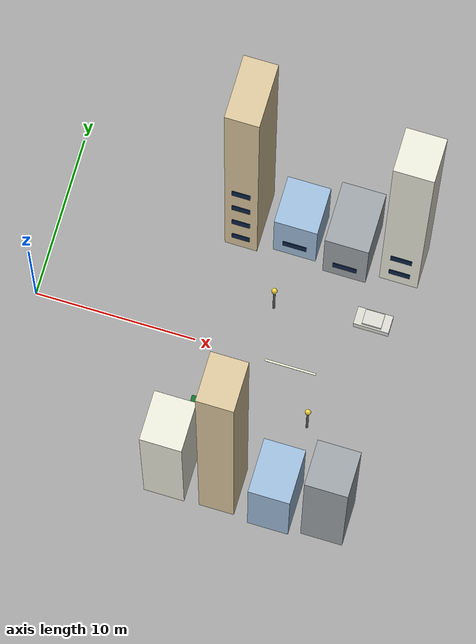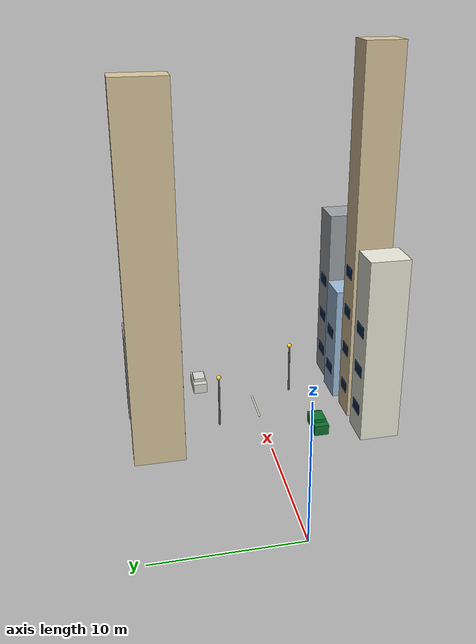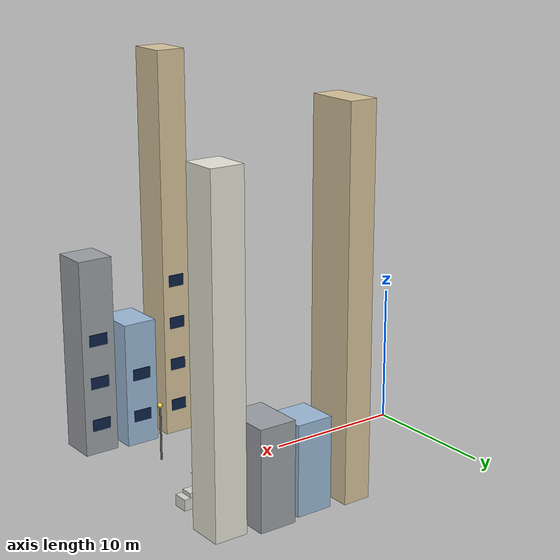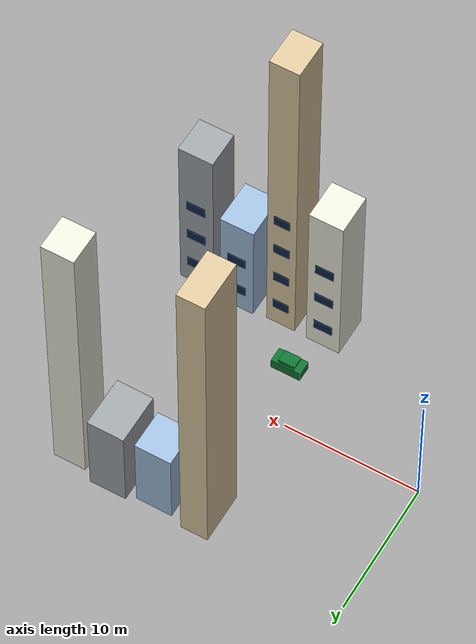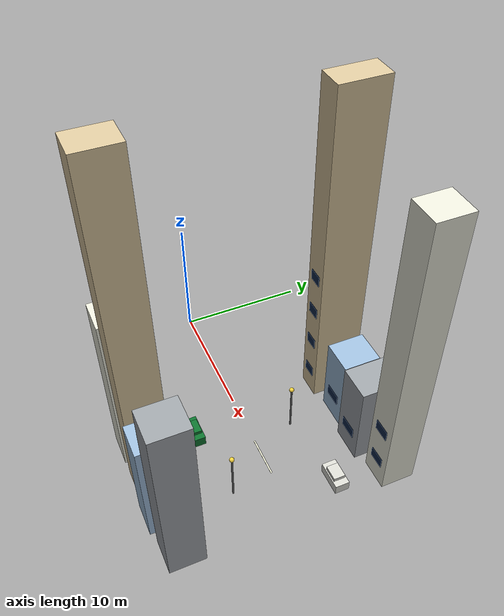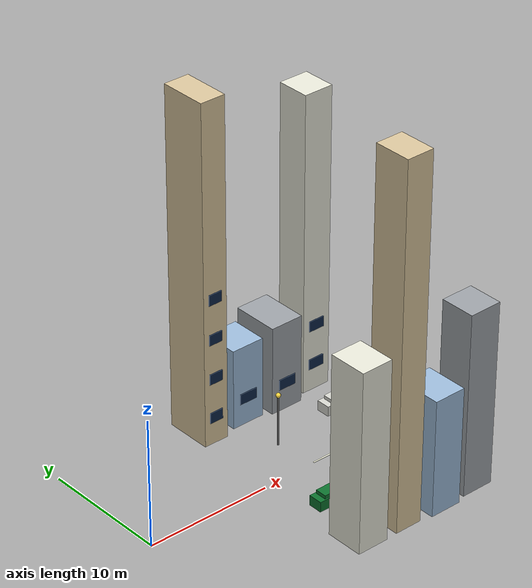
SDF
<sdf version="1.7">
 <world name="urban_street">
  <model name="white_lane_marking_07">
   <static>true</static>
   <pose>16 0 0.055 0 0 0.0</pose>
   <link name="link">
    <collision name="collision"><geometry><box><size>3.2 0.12 0.02</size></box></geometry></collision>
    <visual name="visual">
     <geometry><box><size>3.2 0.12 0.02</size></box></geometry>
     <material>
      <ambient>0.95 0.95 0.85 1</ambient>
      <diffuse>0.95 0.95 0.85 1</diffuse>
      <specular>0.1 0.1 0.1 1</specular>
     </material>
    </visual>
   </link>
  </model>
  <model name="building_facade_17">
   <static>true</static>
   <pose>11.0 -8.2 7.13 0 0 0.0</pose>
   <link name="link">
    <collision name="collision"><geometry><box><size>2.51 2.97 14.25</size></box></geometry></collision>
    <visual name="visual">
     <geometry><box><size>2.51 2.97 14.25</size></box></geometry>
     <material>
      <ambient>0.92 0.92 0.86 1</ambient>
      <diffuse>0.92 0.92 0.86 1</diffuse>
      <specular>0.1 0.1 0.1 1</specular>
     </material>
    </visual>
   </link>
  </model>
  <model name="building_facade_17_window_0">
   <static>true</static>
   <pose>11.0 -6.68 2.2 0 0 0.0</pose>
   <link name="link">
    <collision name="collision"><geometry><box><size>1.38 0.05 0.85</size></box></geometry></collision>
    <visual name="visual">
     <geometry><box><size>1.38 0.05 0.85</size></box></geometry>
     <material>
      <ambient>0.05 0.14 0.28 1</ambient>
      <diffuse>0.05 0.14 0.28 1</diffuse>
      <specular>0.1 0.1 0.1 1</specular>
     </material>
    </visual>
   </link>
  </model>
  <model name="building_facade_17_window_1">
   <static>true</static>
   <pose>11.0 -6.68 5.4 0 0 0.0</pose>
   <link name="link">
    <collision name="collision"><geometry><box><size>1.38 0.05 0.85</size></box></geometry></collision>
    <visual name="visual">
     <geometry><box><size>1.38 0.05 0.85</size></box></geometry>
     <material>
      <ambient>0.05 0.14 0.28 1</ambient>
      <diffuse>0.05 0.14 0.28 1</diffuse>
      <specular>0.1 0.1 0.1 1</specular>
     </material>
    </visual>
   </link>
  </model>
  <model name="building_facade_17_window_2">
   <static>true</static>
   <pose>11.0 -6.68 8.6 0 0 0.0</pose>
   <link name="link">
    <collision name="collision"><geometry><box><size>1.38 0.05 0.85</size></box></geometry></collision>
    <visual name="visual">
     <geometry><box><size>1.38 0.05 0.85</size></box></geometry>
     <material>
      <ambient>0.05 0.14 0.28 1</ambient>
      <diffuse>0.05 0.14 0.28 1</diffuse>
      <specular>0.1 0.1 0.1 1</specular>
     </material>
    </visual>
   </link>
  </model>
  <model name="building_facade_18">
   <static>true</static>
   <pose>14.25 -8.2 14.21 0 0 0.0</pose>
   <link name="link">
    <collision name="collision"><geometry><box><size>2.17 2.85 28.42</size></box></geometry></collision>
    <visual name="visual">
     <geometry><box><size>2.17 2.85 28.42</size></box></geometry>
     <material>
      <ambient>0.86 0.78 0.62 1</ambient>
      <diffuse>0.86 0.78 0.62 1</diffuse>
      <specular>0.1 0.1 0.1 1</specular>
     </material>
    </visual>
   </link>
  </model>
  <model name="building_facade_18_window_0">
   <static>true</static>
   <pose>14.25 -6.75 2.2 0 0 0.0</pose>
   <link name="link">
    <collision name="collision"><geometry><box><size>1.19 0.05 0.85</size></box></geometry></collision>
    <visual name="visual">
     <geometry><box><size>1.19 0.05 0.85</size></box></geometry>
     <material>
      <ambient>0.05 0.14 0.28 1</ambient>
      <diffuse>0.05 0.14 0.28 1</diffuse>
      <specular>0.1 0.1 0.1 1</specular>
     </material>
    </visual>
   </link>
  </model>
  <model name="building_facade_18_window_1">
   <static>true</static>
   <pose>14.25 -6.75 5.4 0 0 0.0</pose>
   <link name="link">
    <collision name="collision"><geometry><box><size>1.19 0.05 0.85</size></box></geometry></collision>
    <visual name="visual">
     <geometry><box><size>1.19 0.05 0.85</size></box></geometry>
     <material>
      <ambient>0.05 0.14 0.28 1</ambient>
      <diffuse>0.05 0.14 0.28 1</diffuse>
      <specular>0.1 0.1 0.1 1</specular>
     </material>
    </visual>
   </link>
  </model>
  <model name="building_facade_18_window_2">
   <static>true</static>
   <pose>14.25 -6.75 8.6 0 0 0.0</pose>
   <link name="link">
    <collision name="collision"><geometry><box><size>1.19 0.05 0.85</size></box></geometry></collision>
    <visual name="visual">
     <geometry><box><size>1.19 0.05 0.85</size></box></geometry>
     <material>
      <ambient>0.05 0.14 0.28 1</ambient>
      <diffuse>0.05 0.14 0.28 1</diffuse>
      <specular>0.1 0.1 0.1 1</specular>
     </material>
    </visual>
   </link>
  </model>
  <model name="building_facade_18_window_3">
   <static>true</static>
   <pose>14.25 -6.75 11.8 0 0 0.0</pose>
   <link name="link">
    <collision name="collision"><geometry><box><size>1.19 0.05 0.85</size></box></geometry></collision>
    <visual name="visual">
     <geometry><box><size>1.19 0.05 0.85</size></box></geometry>
     <material>
      <ambient>0.05 0.14 0.28 1</ambient>
      <diffuse>0.05 0.14 0.28 1</diffuse>
      <specular>0.1 0.1 0.1 1</specular>
     </material>
    </visual>
   </link>
  </model>
  <model name="building_facade_19">
   <static>true</static>
   <pose>17.5 -8.2 4.64 0 0 0.0</pose>
   <link name="link">
    <collision name="collision"><geometry><box><size>2.52 3.29 9.28</size></box></geometry></collision>
    <visual name="visual">
     <geometry><box><size>2.52 3.29 9.28</size></box></geometry>
     <material>
      <ambient>0.62 0.74 0.86 1</ambient>
      <diffuse>0.62 0.74 0.86 1</diffuse>
      <specular>0.1 0.1 0.1 1</specular>
     </material>
    </visual>
   </link>
  </model>
  <model name="building_facade_19_window_0">
   <static>true</static>
   <pose>17.5 -6.52 2.2 0 0 0.0</pose>
   <link name="link">
    <collision name="collision"><geometry><box><size>1.39 0.05 0.85</size></box></geometry></collision>
    <visual name="visual">
     <geometry><box><size>1.39 0.05 0.85</size></box></geometry>
     <material>
      <ambient>0.05 0.14 0.28 1</ambient>
      <diffuse>0.05 0.14 0.28 1</diffuse>
      <specular>0.1 0.1 0.1 1</specular>
     </material>
    </visual>
   </link>
  </model>
  <model name="building_facade_19_window_1">
   <static>true</static>
   <pose>17.5 -6.52 5.4 0 0 0.0</pose>
   <link name="link">
    <collision name="collision"><geometry><box><size>1.39 0.05 0.85</size></box></geometry></collision>
    <visual name="visual">
     <geometry><box><size>1.39 0.05 0.85</size></box></geometry>
     <material>
      <ambient>0.05 0.14 0.28 1</ambient>
      <diffuse>0.05 0.14 0.28 1</diffuse>
      <specular>0.1 0.1 0.1 1</specular>
     </material>
    </visual>
   </link>
  </model>
  <model name="building_facade_20">
   <static>true</static>
   <pose>20.75 -8.2 7.24 0 0 0.0</pose>
   <link name="link">
    <collision name="collision"><geometry><box><size>2.58 2.71 14.49</size></box></geometry></collision>
    <visual name="visual">
     <geometry><box><size>2.58 2.71 14.49</size></box></geometry>
     <material>
      <ambient>0.62 0.64 0.66 1</ambient>
      <diffuse>0.62 0.64 0.66 1</diffuse>
      <specular>0.1 0.1 0.1 1</specular>
     </material>
    </visual>
   </link>
  </model>
  <model name="building_facade_20_window_0">
   <static>true</static>
   <pose>20.75 -6.81 2.2 0 0 0.0</pose>
   <link name="link">
    <collision name="collision"><geometry><box><size>1.42 0.05 0.85</size></box></geometry></collision>
    <visual name="visual">
     <geometry><box><size>1.42 0.05 0.85</size></box></geometry>
     <material>
      <ambient>0.05 0.14 0.28 1</ambient>
      <diffuse>0.05 0.14 0.28 1</diffuse>
      <specular>0.1 0.1 0.1 1</specular>
     </material>
    </visual>
   </link>
  </model>
  <model name="building_facade_20_window_1">
   <static>true</static>
   <pose>20.75 -6.81 5.4 0 0 0.0</pose>
   <link name="link">
    <collision name="collision"><geometry><box><size>1.42 0.05 0.85</size></box></geometry></collision>
    <visual name="visual">
     <geometry><box><size>1.42 0.05 0.85</size></box></geometry>
     <material>
      <ambient>0.05 0.14 0.28 1</ambient>
      <diffuse>0.05 0.14 0.28 1</diffuse>
      <specular>0.1 0.1 0.1 1</specular>
     </material>
    </visual>
   </link>
  </model>
  <model name="building_facade_20_window_2">
   <static>true</static>
   <pose>20.75 -6.81 8.6 0 0 0.0</pose>
   <link name="link">
    <collision name="collision"><geometry><box><size>1.42 0.05 0.85</size></box></geometry></collision>
    <visual name="visual">
     <geometry><box><size>1.42 0.05 0.85</size></box></geometry>
     <material>
      <ambient>0.05 0.14 0.28 1</ambient>
      <diffuse>0.05 0.14 0.28 1</diffuse>
      <specular>0.1 0.1 0.1 1</specular>
     </material>
    </visual>
   </link>
  </model>
  <model name="building_facade_43">
   <static>true</static>
   <pose>11.0 8.2 13.48 0 0 0.0</pose>
   <link name="link">
    <collision name="collision"><geometry><box><size>2.02 3.71 26.97</size></box></geometry></collision>
    <visual name="visual">
     <geometry><box><size>2.02 3.71 26.97</size></box></geometry>
     <material>
      <ambient>0.86 0.78 0.62 1</ambient>
      <diffuse>0.86 0.78 0.62 1</diffuse>
      <specular>0.1 0.1 0.1 1</specular>
     </material>
    </visual>
   </link>
  </model>
  <model name="building_facade_43_window_0">
   <static>true</static>
   <pose>11.0 6.32 2.2 0 0 0.0</pose>
   <link name="link">
    <collision name="collision"><geometry><box><size>1.11 0.05 0.85</size></box></geometry></collision>
    <visual name="visual">
     <geometry><box><size>1.11 0.05 0.85</size></box></geometry>
     <material>
      <ambient>0.05 0.14 0.28 1</ambient>
      <diffuse>0.05 0.14 0.28 1</diffuse>
      <specular>0.1 0.1 0.1 1</specular>
     </material>
    </visual>
   </link>
  </model>
  <model name="building_facade_43_window_1">
   <static>true</static>
   <pose>11.0 6.32 5.4 0 0 0.0</pose>
   <link name="link">
    <collision name="collision"><geometry><box><size>1.11 0.05 0.85</size></box></geometry></collision>
    <visual name="visual">
     <geometry><box><size>1.11 0.05 0.85</size></box></geometry>
     <material>
      <ambient>0.05 0.14 0.28 1</ambient>
      <diffuse>0.05 0.14 0.28 1</diffuse>
      <specular>0.1 0.1 0.1 1</specular>
     </material>
    </visual>
   </link>
  </model>
  <model name="building_facade_43_window_2">
   <static>true</static>
   <pose>11.0 6.32 8.6 0 0 0.0</pose>
   <link name="link">
    <collision name="collision"><geometry><box><size>1.11 0.05 0.85</size></box></geometry></collision>
    <visual name="visual">
     <geometry><box><size>1.11 0.05 0.85</size></box></geometry>
     <material>
      <ambient>0.05 0.14 0.28 1</ambient>
      <diffuse>0.05 0.14 0.28 1</diffuse>
      <specular>0.1 0.1 0.1 1</specular>
     </material>
    </visual>
   </link>
  </model>
  <model name="building_facade_43_window_3">
   <static>true</static>
   <pose>11.0 6.32 11.8 0 0 0.0</pose>
   <link name="link">
    <collision name="collision"><geometry><box><size>1.11 0.05 0.85</size></box></geometry></collision>
    <visual name="visual">
     <geometry><box><size>1.11 0.05 0.85</size></box></geometry>
     <material>
      <ambient>0.05 0.14 0.28 1</ambient>
      <diffuse>0.05 0.14 0.28 1</diffuse>
      <specular>0.1 0.1 0.1 1</specular>
     </material>
    </visual>
   </link>
  </model>
  <model name="building_facade_44">
   <static>true</static>
   <pose>14.25 8.2 3.22 0 0 0.0</pose>
   <link name="link">
    <collision name="collision"><geometry><box><size>2.67 2.9 6.45</size></box></geometry></collision>
    <visual name="visual">
     <geometry><box><size>2.67 2.9 6.45</size></box></geometry>
     <material>
      <ambient>0.62 0.74 0.86 1</ambient>
      <diffuse>0.62 0.74 0.86 1</diffuse>
      <specular>0.1 0.1 0.1 1</specular>
     </material>
    </visual>
   </link>
  </model>
  <model name="building_facade_44_window_0">
   <static>true</static>
   <pose>14.25 6.72 2.2 0 0 0.0</pose>
   <link name="link">
    <collision name="collision"><geometry><box><size>1.47 0.05 0.85</size></box></geometry></collision>
    <visual name="visual">
     <geometry><box><size>1.47 0.05 0.85</size></box></geometry>
     <material>
      <ambient>0.05 0.14 0.28 1</ambient>
      <diffuse>0.05 0.14 0.28 1</diffuse>
      <specular>0.1 0.1 0.1 1</specular>
     </material>
    </visual>
   </link>
  </model>
  <model name="building_facade_45">
   <static>true</static>
   <pose>17.5 8.2 3.57 0 0 0.0</pose>
   <link name="link">
    <collision name="collision"><geometry><box><size>2.7 3.73 7.14</size></box></geometry></collision>
    <visual name="visual">
     <geometry><box><size>2.7 3.73 7.14</size></box></geometry>
     <material>
      <ambient>0.62 0.64 0.66 1</ambient>
      <diffuse>0.62 0.64 0.66 1</diffuse>
      <specular>0.1 0.1 0.1 1</specular>
     </material>
    </visual>
   </link>
  </model>
  <model name="building_facade_45_window_0">
   <static>true</static>
   <pose>17.5 6.3 2.2 0 0 0.0</pose>
   <link name="link">
    <collision name="collision"><geometry><box><size>1.49 0.05 0.85</size></box></geometry></collision>
    <visual name="visual">
     <geometry><box><size>1.49 0.05 0.85</size></box></geometry>
     <material>
      <ambient>0.05 0.14 0.28 1</ambient>
      <diffuse>0.05 0.14 0.28 1</diffuse>
      <specular>0.1 0.1 0.1 1</specular>
     </material>
    </visual>
   </link>
  </model>
  <model name="building_facade_46">
   <static>true</static>
   <pose>20.75 8.2 12.01 0 0 0.0</pose>
   <link name="link">
    <collision name="collision"><geometry><box><size>2.39 2.59 24.02</size></box></geometry></collision>
    <visual name="visual">
     <geometry><box><size>2.39 2.59 24.02</size></box></geometry>
     <material>
      <ambient>0.92 0.92 0.86 1</ambient>
      <diffuse>0.92 0.92 0.86 1</diffuse>
      <specular>0.1 0.1 0.1 1</specular>
     </material>
    </visual>
   </link>
  </model>
  <model name="building_facade_46_window_0">
   <static>true</static>
   <pose>20.75 6.88 2.2 0 0 0.0</pose>
   <link name="link">
    <collision name="collision"><geometry><box><size>1.31 0.05 0.85</size></box></geometry></collision>
    <visual name="visual">
     <geometry><box><size>1.31 0.05 0.85</size></box></geometry>
     <material>
      <ambient>0.05 0.14 0.28 1</ambient>
      <diffuse>0.05 0.14 0.28 1</diffuse>
      <specular>0.1 0.1 0.1 1</specular>
     </material>
    </visual>
   </link>
  </model>
  <model name="building_facade_46_window_1">
   <static>true</static>
   <pose>20.75 6.88 5.4 0 0 0.0</pose>
   <link name="link">
    <collision name="collision"><geometry><box><size>1.31 0.05 0.85</size></box></geometry></collision>
    <visual name="visual">
     <geometry><box><size>1.31 0.05 0.85</size></box></geometry>
     <material>
      <ambient>0.05 0.14 0.28 1</ambient>
      <diffuse>0.05 0.14 0.28 1</diffuse>
      <specular>0.1 0.1 0.1 1</specular>
     </material>
    </visual>
   </link>
  </model>
  <model name="street_pole_13">
   <static>true</static>
   <pose>14.0 3.25 2.0 0 0 0</pose>
   <link name="link">
    <collision name="collision">
     <geometry><cylinder><radius>0.07</radius><length>4.0</length></cylinder></geometry>
    </collision>
    <visual name="visual">
     <geometry><cylinder><radius>0.07</radius><length>4.0</length></cylinder></geometry>
     <material>
      <ambient>0.35 0.35 0.35 1</ambient>
      <diffuse>0.35 0.35 0.35 1</diffuse>
      <specular>0.1 0.1 0.1 1</specular>
     </material>
    </visual>
   </link>
  </model>
  <model name="lamp_head_13">
   <static>true</static>
   <pose>14.0 3.25 4.15 0 0 0</pose>
   <link name="link">
    <visual name="visual">
     <geometry><sphere><radius>0.18</radius></sphere></geometry>
     <material>
      <ambient>1.0 0.85 0.25 1</ambient>
      <diffuse>1.0 0.85 0.25 1</diffuse>
      <specular>0.1 0.1 0.1 1</specular>
     </material>
    </visual>
   </link>
  </model>
  <model name="street_pole_14">
   <static>true</static>
   <pose>18.0 -3.25 2.0 0 0 0</pose>
   <link name="link">
    <collision name="collision">
     <geometry><cylinder><radius>0.07</radius><length>4.0</length></cylinder></geometry>
    </collision>
    <visual name="visual">
     <geometry><cylinder><radius>0.07</radius><length>4.0</length></cylinder></geometry>
     <material>
      <ambient>0.35 0.35 0.35 1</ambient>
      <diffuse>0.35 0.35 0.35 1</diffuse>
      <specular>0.1 0.1 0.1 1</specular>
     </material>
    </visual>
   </link>
  </model>
  <model name="lamp_head_14">
   <static>true</static>
   <pose>18.0 -3.25 4.15 0 0 0</pose>
   <link name="link">
    <visual name="visual">
     <geometry><sphere><radius>0.18</radius></sphere></geometry>
     <material>
      <ambient>1.0 0.85 0.25 1</ambient>
      <diffuse>1.0 0.85 0.25 1</diffuse>
      <specular>0.1 0.1 0.1 1</specular>
     </material>
    </visual>
   </link>
  </model>
  <model name="parked_vehicle_body_06">
   <static>true</static>
   <pose>12 -4.05 0.45 0 0 0.0</pose>
   <link name="link">
    <collision name="collision"><geometry><box><size>2.2 1.1 0.8</size></box></geometry></collision>
    <visual name="visual">
     <geometry><box><size>2.2 1.1 0.8</size></box></geometry>
     <material>
      <ambient>0.05 0.45 0.18 1</ambient>
      <diffuse>0.05 0.45 0.18 1</diffuse>
      <specular>0.1 0.1 0.1 1</specular>
     </material>
    </visual>
   </link>
  </model>
  <model name="parked_vehicle_roof_06">
   <static>true</static>
   <pose>12 -4.05 0.95 0 0 0.0</pose>
   <link name="link">
    <collision name="collision"><geometry><box><size>1.2 0.9 0.35</size></box></geometry></collision>
    <visual name="visual">
     <geometry><box><size>1.2 0.9 0.35</size></box></geometry>
     <material>
      <ambient>0.05 0.45 0.18 1</ambient>
      <diffuse>0.05 0.45 0.18 1</diffuse>
      <specular>0.1 0.1 0.1 1</specular>
     </material>
    </visual>
   </link>
  </model>
  <model name="parked_vehicle_body_07">
   <static>true</static>
   <pose>20 4.05 0.45 0 0 0.0</pose>
   <link name="link">
    <collision name="collision"><geometry><box><size>2.2 1.1 0.8</size></box></geometry></collision>
    <visual name="visual">
     <geometry><box><size>2.2 1.1 0.8</size></box></geometry>
     <material>
      <ambient>0.85 0.85 0.82 1</ambient>
      <diffuse>0.85 0.85 0.82 1</diffuse>
      <specular>0.1 0.1 0.1 1</specular>
     </material>
    </visual>
   </link>
  </model>
  <model name="parked_vehicle_roof_07">
   <static>true</static>
   <pose>20 4.05 0.95 0 0 0.0</pose>
   <link name="link">
    <collision name="collision"><geometry><box><size>1.2 0.9 0.35</size></box></geometry></collision>
    <visual name="visual">
     <geometry><box><size>1.2 0.9 0.35</size></box></geometry>
     <material>
      <ambient>0.85 0.85 0.82 1</ambient>
      <diffuse>0.85 0.85 0.82 1</diffuse>
      <specular>0.1 0.1 0.1 1</specular>
     </material>
    </visual>
   </link>
  </model>
 </world>
</sdf>
